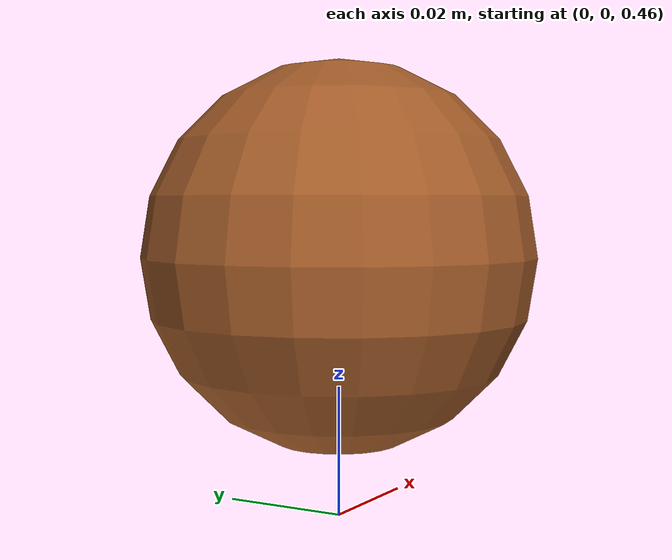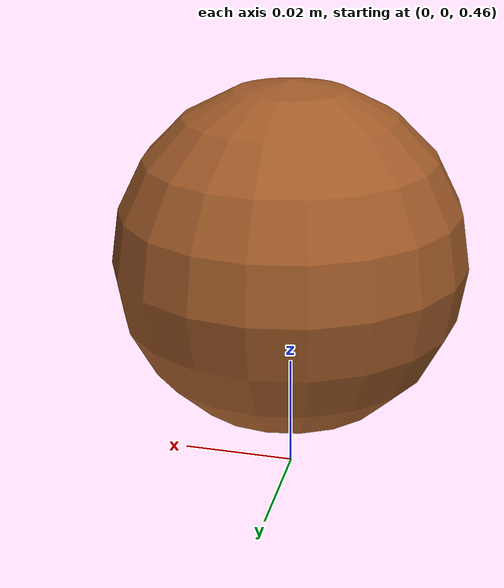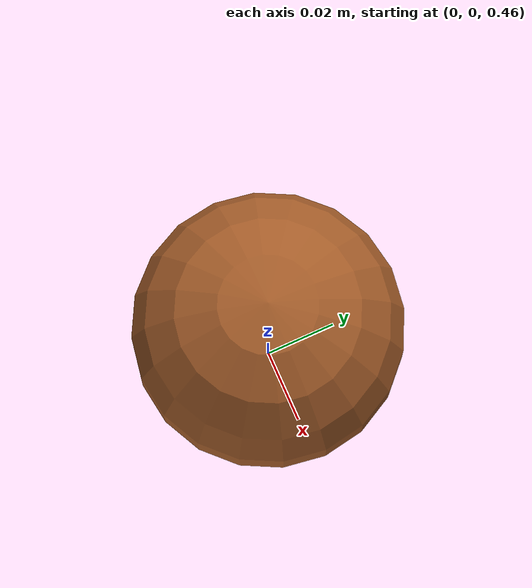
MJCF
<mujoco model="base">
  <option timestep="0.005" iterations="50" solver="Newton" tolerance="1e-10"/>

  <visual>
    <map force="0.1" zfar="30"/>
    <rgba haze="0.15 0.25 0.35 1"/>
    <global offwidth="2560" offheight="1440" elevation="20" azimuth="120"/>
  </visual>

  <statistic center="0 0 0.7"/>

  <asset>
    <texture type="skybox" builtin="gradient" rgb1=".3 .5 .7" rgb2="0 0 0" width="32" height="512"/>
    <texture name="body" type="cube" builtin="flat" mark="cross" width="128" height="128" rgb1="0.8 0.6 0.4" rgb2="0.8 0.6 0.4" markrgb="1 1 1" random="0.01"/>
    <material name="body" texture="body" texuniform="true" rgba="0.8 0.6 .4 1"/>
    <texture name="grid" type="2d" builtin="checker" width="512" height="512" rgb1=".1 .2 .3" rgb2=".2 .3 .4"/>
    <material name="grid" texture="grid" texrepeat="1 1" texuniform="true" reflectance=".2"/>
  </asset>

  <worldbody>
    <geom name="floor" size="0 0 .05" type="plane" material="grid" condim="3"/>

    <light name="spotlight" mode="targetbodycom" target="ball" diffuse=".8 .8 .8" specular="0.3 0.3 0.3" pos="0 -6 4" cutoff="30"/>

    <body name="ball" pos="0 0 0.5">
        <freejoint name="ball"/>
        <geom name="ball" size="0.03" type="sphere" material="body" mass="0.05" group="1" condim="6" friction=".6" solimp=".7 .8 .003" solref=".015 1" />
    </body>

  </worldbody>

</mujoco>
